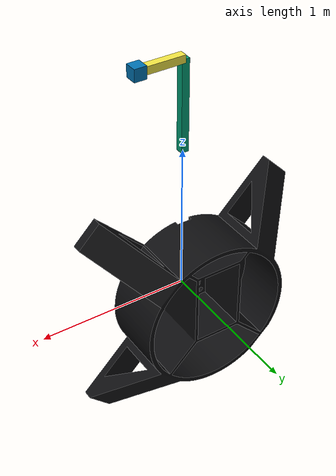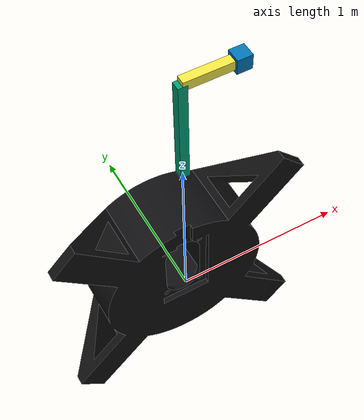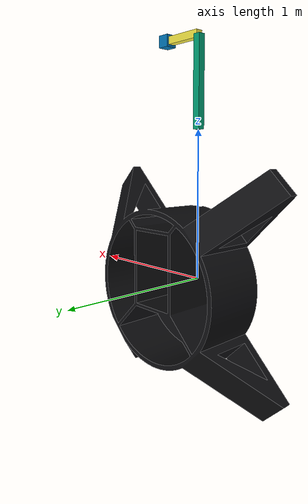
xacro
<?xml version="1.0"?>
<robot name="prarob_manipulator" xmlns:xacro="http://ros.org/wiki/xacro">
  <xacro:include filename="$(find connect_the_bdots)/urdf/prarob_manipulator.xacro" />
  <xacro:include filename="$(find connect_the_bdots)/urdf/prarob_manipulator.ros2_control.xacro" />

  <link name="world"/>

  <xacro:prarob_manipulator parent="world">
    <origin xyz="0 0 0" rpy="0 0 0" />
  </xacro:prarob_manipulator>

  <xacro:prarob_manipulator_ros2_control name="prarob_manipulator_ros2_control" />
</robot>

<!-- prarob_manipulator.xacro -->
<robot xmlns:xacro="http://ros.org/wiki/xacro">

<xacro:macro name="prarob_manipulator" params="parent *origin">
  <joint name="origin_to_link1" type="fixed">
    <xacro:insert_block name="origin" />
    <parent link="${parent}" />
    <child link="link1" />
    <origin xyz="0.0 0.0 0.0" rpy="0 0 0"/>
    <axis xyz="0 0 1" />
  </joint>

  <!-- Link 1 - primitives-->

<!-- Link 1 - stl -->
  <link name="link1">
    <visual>
      <origin rpy="0 0 0" xyz="0 0 0"/>
      <geometry>
        <mesh filename="package://connect_the_bdots/meshes/SeminarBase.step" scale="0.01 0.01 0.01"/>
      </geometry>
      <material name="">
        <color rgba="0.054901960784313725 0.054901960784313725 0.06274509803921569 1.0"/>
      </material>
    </visual>
    <collision>
      <origin rpy="0 0 0" xyz="0 0 0"/>
      <geometry>
        <mesh filename="package://connect_the_bdots/meshes/SeminarBase.step" scale="0.01 0.01 0.01"/>
      </geometry>
    </collision>

  </link>

  <!-- Joint 1 -->
  <joint name="joint1" type="revolute">
    <parent link="link1"/>
    <child link="link2"/>
    <origin xyz="0.0 0.0 1.0" rpy="0 0 0"/>
    <axis xyz="0 0 1"/>
    <limit velocity="10.0" effort="1" lower="-2.82743338823" upper="2.82743338823" />
  </joint>

  <!-- Link 2 -->
  <link name="link2">
    <visual>
      <origin xyz="0 0 0.3" rpy="0 0 0"/>
      <geometry>
        <box size="0.05 0.05 0.6"/>
      </geometry>
      <color rgba="0 0.8 0.0 1"/>
    </visual>

    <collision>
      <origin xyz="0 0 0.3" rpy="0 0 0"/>
      <geometry>
        <box size="0.05 0.05 0.6"/>
      </geometry>
    </collision>
  </link>

  <!-- Joint 2 -->
  <joint name="joint2" type="revolute">
    <parent link="link2"/>
    <child link="link3"/>
    <origin xyz="0.0 0.0 0.60" rpy="0 0 0"/>
    <axis xyz="1 0 0"/>
    <limit velocity="10.0" effort="1" lower="-2.82743338823" upper="2.82743338823" />
  </joint>

  <!-- Link 3 -->
  <link name="link3">
    <visual>
      <origin xyz="0.15 0 0" rpy="0 0 0"/>
      <geometry>
        <box size="0.3 0.05 0.05"/>
      </geometry>
      <color rgba="0 0 0.8 1"/>
    </visual>

    <collision>
      <origin xyz="0 0 0" rpy="0 0 0"/>
      <geometry>
        <box size="0.3 0.05 0.05"/>
      </geometry>
    </collision>
  </link>

  <!-- Joint 2 -->
  <joint name="joint3" type="revolute">
    <parent link="link3"/>
    <child link="link_tool"/>
    <origin xyz="0.3 0.0 0.0" rpy="0 0 0"/>
    <axis xyz="1 0 0"/>
    <limit velocity="10.0" effort="1" lower="-2.82743338823" upper="2.82743338823" />
  </joint>

  <!-- link_tool -->
  <link name="link_tool">
    <visual>
      <origin xyz="0 0 0" rpy="0 0 0"/>
      <geometry>
        <box size="0.08 0.08 0.08"/>
      </geometry>
      <color rgba="0 0 0.8 1"/>
    </visual>

    <collision>
      <origin xyz="0 0 0" rpy="0 0 0"/>
      <geometry>
        <box size="0.08 0.08 0.08"/>
      </geometry>
    </collision>
  </link>

</xacro:macro>
</robot>
